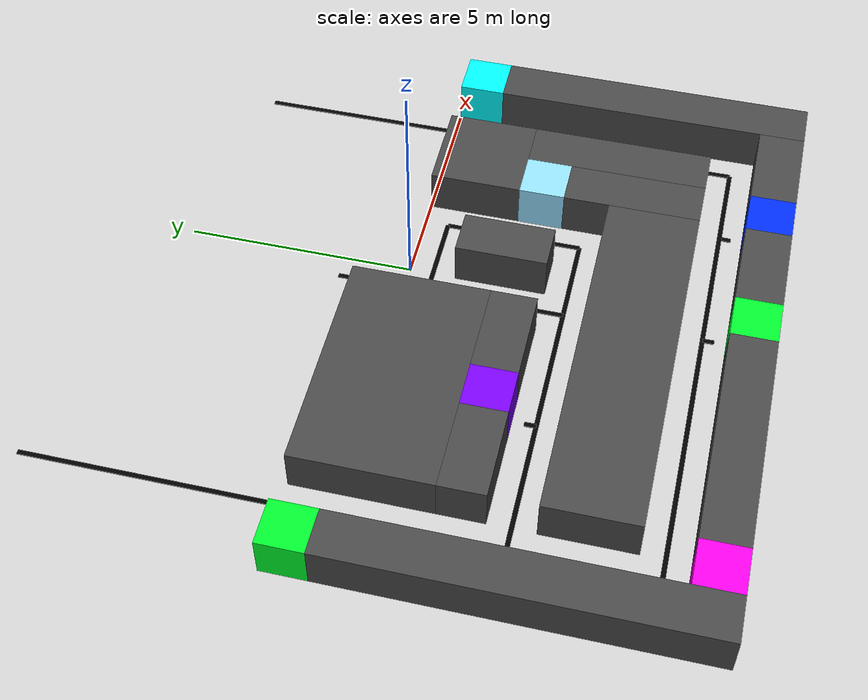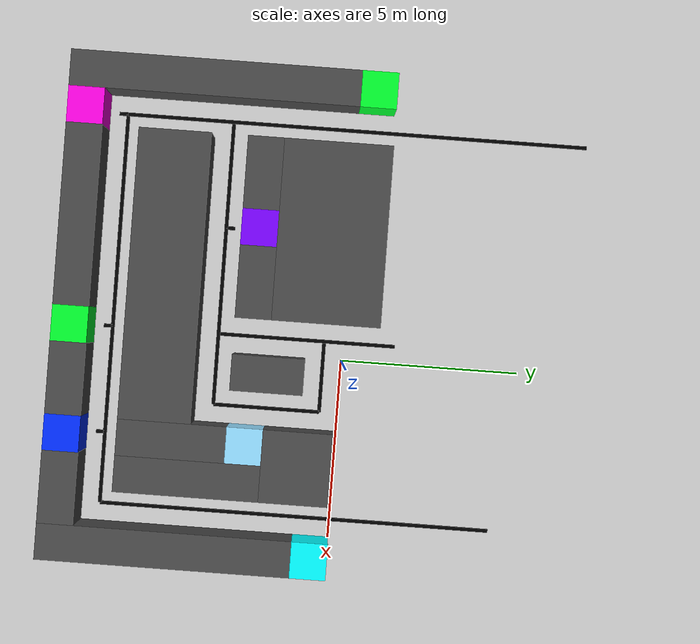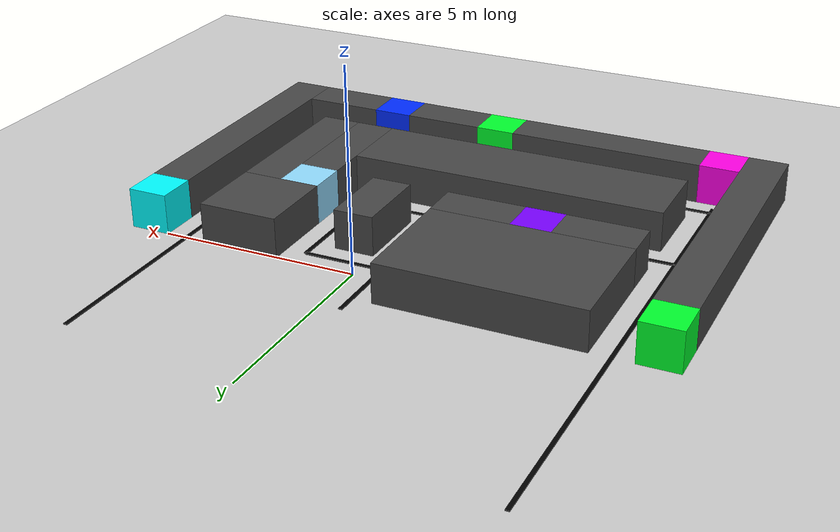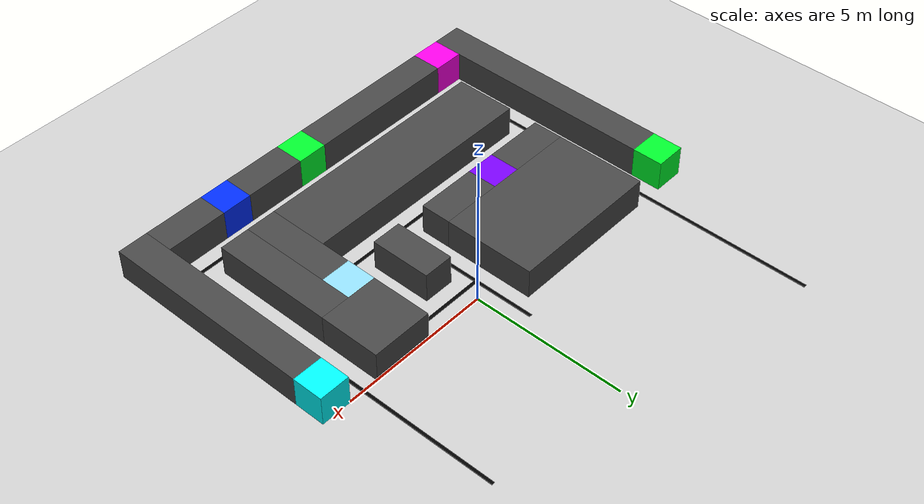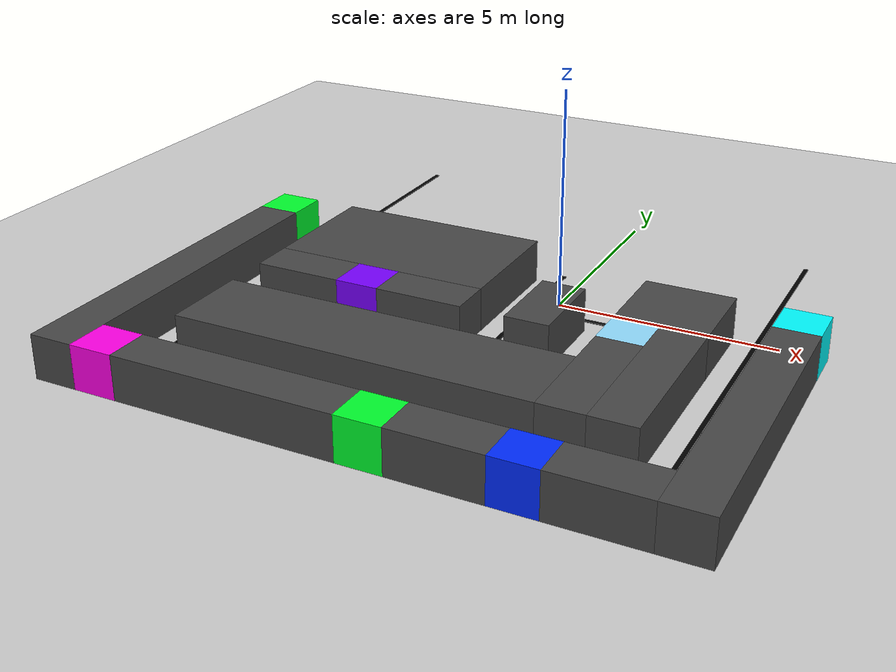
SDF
<sdf version="1.10">
 <world name="empty">
  <model name="ground_plane">
   <static>true</static>
   <link name="link">
    <collision name="collision">
     <geometry><plane><normal>0 0 1</normal><size>100 100</size></plane></geometry>
    </collision>
    <visual name="visual">
     <geometry><plane><normal>0 0 1</normal><size>100 100</size></plane></geometry>
     <material>
      <ambient>0.800000012 0.800000012 0.800000012 1</ambient>
      <diffuse>0.800000012 0.800000012 0.800000012 1</diffuse>
      <specular>0.800000012 0.800000012 0.800000012 1</specular>
     </material>
    </visual>
    <inertial>
     <mass>1</mass>
     <inertia><ixx>1</ixx><ixy>0</ixy><ixz>0</ixz><iyy>1</iyy><iyz>0</iyz><izz>1</izz></inertia>
    </inertial>
   </link>
  </model>
  <model name="CHARGER_0">
   <pose>-7.5 0.5 0.5 4.6034300000035886e-07 4.6038700000035991e-07 6.6837400000052513e-10</pose>
   <link name="box_link">
    <inertial>
     <inertia><ixx>0.16666</ixx><ixy>0</ixy><ixz>0</ixz><iyy>0.16666</iyy><iyz>0</iyz><izz>0.16666</izz></inertia>
     <mass>1</mass>
    </inertial>
    <collision name="box_collision"><geometry><box><size>1 1 1</size></box></geometry></collision>
    <visual name="box_visual">
     <geometry><box><size>1 1 1</size></box></geometry>
     <material>
      <ambient>0.300000012 0.300000012 0.300000012 1</ambient>
      <diffuse>0 1 0.175999999 1</diffuse>
      <specular>1 1 1 1</specular>
     </material>
    </visual>
   </link>
   <static>true</static>
  </model>
  <model name="box_2">
   <pose>-7.5 -4 0.5 4.6034300000035886e-07 4.6038700000035991e-07 6.6837400000052513e-10</pose>
   <link name="box_link">
    <inertial>
     <inertia><ixx>0.16666</ixx><ixy>0</ixy><ixz>0</ixz><iyy>0.16666</iyy><iyz>0</iyz><izz>0.16666</izz></inertia>
     <mass>1</mass>
    </inertial>
    <collision name="box_collision"><geometry><box><size>1 8 1</size></box></geometry></collision>
    <visual name="box_visual">
     <geometry><box><size>1 8 1</size></box></geometry>
     <material>
      <ambient>0.300000012 0.300000012 0.300000012 1</ambient>
      <diffuse>0.277999997 0.277999997 0.277999997 1</diffuse>
      <specular>1 1 1 1</specular>
     </material>
    </visual>
   </link>
   <static>true</static>
  </model>
  <model name="HOUSE_6">
   <pose>5.5 -0.5 0.5 4.6840416479999999e-44 0 0</pose>
   <link name="box_link">
    <inertial>
     <inertia><ixx>0.16666</ixx><ixy>0</ixy><ixz>0</ixz><iyy>0.16666</iyy><iyz>0</iyz><izz>0.16666</izz></inertia>
     <mass>1</mass>
    </inertial>
    <collision name="box_collision"><geometry><box><size>1 1 1</size></box></geometry></collision>
    <visual name="box_visual">
     <geometry><box><size>1 1 1</size></box></geometry>
     <material>
      <ambient>0.300000012 0.300000012 0.300000012 1</ambient>
      <diffuse>0 0.984000027 1 1</diffuse>
      <specular>1 1 1 1</specular>
     </material>
    </visual>
   </link>
   <static>true</static>
  </model>
  <model name="box_9">
   <pose>5.5 -4.5 0.5 -8.9888212590000021e-45 0 0</pose>
   <link name="box_link">
    <inertial>
     <inertia><ixx>0.16666</ixx><ixy>0</ixy><ixz>0</ixz><iyy>0.16666</iyy><iyz>0</iyz><izz>0.16666</izz></inertia>
     <mass>1</mass>
    </inertial>
    <collision name="box_collision"><geometry><box><size>1 7 1</size></box></geometry></collision>
    <visual name="box_visual">
     <geometry><box><size>1 7 1</size></box></geometry>
     <material>
      <ambient>0.300000012 0.300000012 0.300000012 1</ambient>
      <diffuse>0.277999997 0.277999997 0.277999997 1</diffuse>
      <specular>1 1 1 1</specular>
     </material>
    </visual>
   </link>
   <static>true</static>
  </model>
  <model name="box_10">
   <pose>4 -7.5 0.5 0 0 0</pose>
   <link name="box_link">
    <inertial>
     <inertia><ixx>0.16666</ixx><ixy>0</ixy><ixz>0</ixz><iyy>0.16666</iyy><iyz>0</iyz><izz>0.16666</izz></inertia>
     <mass>1</mass>
    </inertial>
    <collision name="box_collision"><geometry><box><size>2 1 1</size></box></geometry></collision>
    <visual name="box_visual">
     <geometry><box><size>2 1 1</size></box></geometry>
     <material>
      <ambient>0.300000012 0.300000012 0.300000012 1</ambient>
      <diffuse>0.277999997 0.277999997 0.277999997 1</diffuse>
      <specular>1 1 1 1</specular>
     </material>
    </visual>
   </link>
   <static>true</static>
  </model>
  <model name="HOUSE_9">
   <pose>2.5 -7.5 0.5 0 0 0</pose>
   <link name="box_link">
    <inertial>
     <inertia><ixx>0.16666</ixx><ixy>0</ixy><ixz>0</ixz><iyy>0.16666</iyy><iyz>0</iyz><izz>0.16666</izz></inertia>
     <mass>1</mass>
    </inertial>
    <collision name="box_collision"><geometry><box><size>1 1 1</size></box></geometry></collision>
    <visual name="box_visual">
     <geometry><box><size>1 1 1</size></box></geometry>
     <material>
      <ambient>0.300000012 0.300000012 0.300000012 1</ambient>
      <diffuse>0 0.172999993 1 1</diffuse>
      <specular>1 1 1 1</specular>
     </material>
    </visual>
   </link>
   <static>true</static>
  </model>
  <model name="box_12">
   <pose>1 -7.5 0.5 0 0 0</pose>
   <link name="box_link">
    <inertial>
     <inertia><ixx>0.16666</ixx><ixy>0</ixy><ixz>0</ixz><iyy>0.16666</iyy><iyz>0</iyz><izz>0.16666</izz></inertia>
     <mass>1</mass>
    </inertial>
    <collision name="box_collision"><geometry><box><size>2 1 1</size></box></geometry></collision>
    <visual name="box_visual">
     <geometry><box><size>2 1 1</size></box></geometry>
     <material>
      <ambient>0.300000012 0.300000012 0.300000012 1</ambient>
      <diffuse>0.277999997 0.277999997 0.277999997 1</diffuse>
      <specular>1 1 1 1</specular>
     </material>
    </visual>
   </link>
   <static>true</static>
  </model>
  <model name="CHARGER_2">
   <pose>-0.5 -7.5 0.5 0 0 0</pose>
   <link name="box_link">
    <inertial>
     <inertia><ixx>0.16666</ixx><ixy>0</ixy><ixz>0</ixz><iyy>0.16666</iyy><iyz>0</iyz><izz>0.16666</izz></inertia>
     <mass>1</mass>
    </inertial>
    <collision name="box_collision"><geometry><box><size>1 1 1</size></box></geometry></collision>
    <visual name="box_visual">
     <geometry><box><size>1 1 1</size></box></geometry>
     <material>
      <ambient>0.300000012 0.300000012 0.300000012 1</ambient>
      <diffuse>0 1 0.175999999 1</diffuse>
      <specular>1 1 1 1</specular>
     </material>
    </visual>
   </link>
   <static>true</static>
  </model>
  <model name="box_14">
   <pose>-3.5 -7.5 0.5 0 0 0</pose>
   <link name="box_link">
    <inertial>
     <inertia><ixx>0.16666</ixx><ixy>0</ixy><ixz>0</ixz><iyy>0.16666</iyy><iyz>0</iyz><izz>0.16666</izz></inertia>
     <mass>1</mass>
    </inertial>
    <collision name="box_collision"><geometry><box><size>5 1 1</size></box></geometry></collision>
    <visual name="box_visual">
     <geometry><box><size>5 1 1</size></box></geometry>
     <material>
      <ambient>0.300000012 0.300000012 0.300000012 1</ambient>
      <diffuse>0.277999997 0.277999997 0.277999997 1</diffuse>
      <specular>1 1 1 1</specular>
     </material>
    </visual>
   </link>
   <static>true</static>
  </model>
  <model name="HOUSE_7">
   <pose>-6.5 -7.5 0.5 0 0 0</pose>
   <link name="box_link">
    <inertial>
     <inertia><ixx>0.16666</ixx><ixy>0</ixy><ixz>0</ixz><iyy>0.16666</iyy><iyz>0</iyz><izz>0.16666</izz></inertia>
     <mass>1</mass>
    </inertial>
    <collision name="box_collision"><geometry><box><size>1 1 1</size></box></geometry></collision>
    <visual name="box_visual">
     <geometry><box><size>1 1 1</size></box></geometry>
     <material>
      <ambient>0.300000012 0.300000012 0.300000012 1</ambient>
      <diffuse>1 0 0.898000002 1</diffuse>
      <specular>1 1 1 1</specular>
     </material>
    </visual>
   </link>
   <static>true</static>
  </model>
  <model name="box_29">
   <pose>-3.5 -0.5 0.5 0 0 0</pose>
   <link name="box_link">
    <inertial>
     <inertia><ixx>0.16666</ixx><ixy>0</ixy><ixz>0</ixz><iyy>0.16666</iyy><iyz>0</iyz><izz>0.16666</izz></inertia>
     <mass>1</mass>
    </inertial>
    <collision name="box_collision"><geometry><box><size>5 3 1</size></box></geometry></collision>
    <visual name="box_visual">
     <geometry><box><size>5 3 1</size></box></geometry>
     <material>
      <ambient>0.300000012 0.300000012 0.300000012 1</ambient>
      <diffuse>0.277999997 0.277999997 0.277999997 1</diffuse>
      <specular>1 1 1 1</specular>
     </material>
    </visual>
   </link>
   <static>true</static>
  </model>
  <model name="box_30">
   <pose>-5 -2.5 0.5 0 0 0</pose>
   <link name="box_link">
    <inertial>
     <inertia><ixx>0.16666</ixx><ixy>0</ixy><ixz>0</ixz><iyy>0.16666</iyy><iyz>0</iyz><izz>0.16666</izz></inertia>
     <mass>1</mass>
    </inertial>
    <collision name="box_collision"><geometry><box><size>2 1 1</size></box></geometry></collision>
    <visual name="box_visual">
     <geometry><box><size>2 1 1</size></box></geometry>
     <material>
      <ambient>0.300000012 0.300000012 0.300000012 1</ambient>
      <diffuse>0.277999997 0.277999997 0.277999997 1</diffuse>
      <specular>1 1 1 1</specular>
     </material>
    </visual>
   </link>
   <static>true</static>
  </model>
  <model name="HOUSE_8">
   <pose>-3.5 -2.5 0.5 0 0 0</pose>
   <link name="box_link">
    <inertial>
     <inertia><ixx>0.16666</ixx><ixy>0</ixy><ixz>0</ixz><iyy>0.16666</iyy><iyz>0</iyz><izz>0.16666</izz></inertia>
     <mass>1</mass>
    </inertial>
    <collision name="box_collision"><geometry><box><size>1 1 1</size></box></geometry></collision>
    <visual name="box_visual">
     <geometry><box><size>1 1 1</size></box></geometry>
     <material>
      <ambient>0.300000012 0.300000012 0.300000012 1</ambient>
      <diffuse>0.470999986 0 1 1</diffuse>
      <specular>1 1 1 1</specular>
     </material>
    </visual>
   </link>
   <static>true</static>
  </model>
  <model name="box_32">
   <pose>-2 -2.5 0.5 0 0 0</pose>
   <link name="box_link">
    <inertial>
     <inertia><ixx>0.16666</ixx><ixy>0</ixy><ixz>0</ixz><iyy>0.16666</iyy><iyz>0</iyz><izz>0.16666</izz></inertia>
     <mass>1</mass>
    </inertial>
    <collision name="box_collision"><geometry><box><size>2 1 1</size></box></geometry></collision>
    <visual name="box_visual">
     <geometry><box><size>2 1 1</size></box></geometry>
     <material>
      <ambient>0.300000012 0.300000012 0.300000012 1</ambient>
      <diffuse>0.277999997 0.277999997 0.277999997 1</diffuse>
      <specular>1 1 1 1</specular>
     </material>
    </visual>
   </link>
   <static>true</static>
  </model>
  <model name="box_33">
   <pose>0.5 -2 0.5 0 0 0</pose>
   <link name="box_link">
    <inertial>
     <inertia><ixx>0.16666</ixx><ixy>0</ixy><ixz>0</ixz><iyy>0.16666</iyy><iyz>0</iyz><izz>0.16666</izz></inertia>
     <mass>1</mass>
    </inertial>
    <collision name="box_collision"><geometry><box><size>1 2 1</size></box></geometry></collision>
    <visual name="box_visual">
     <geometry><box><size>1 2 1</size></box></geometry>
     <material>
      <ambient>0.300000012 0.300000012 0.300000012 1</ambient>
      <diffuse>0.277999997 0.277999997 0.277999997 1</diffuse>
      <specular>1 1 1 1</specular>
     </material>
    </visual>
   </link>
   <static>true</static>
  </model>
  <model name="box_35">
   <pose>3 -1 0.5 0 0 0</pose>
   <link name="box_link">
    <inertial>
     <inertia><ixx>0.16666</ixx><ixy>0</ixy><ixz>0</ixz><iyy>0.16666</iyy><iyz>0</iyz><izz>0.16666</izz></inertia>
     <mass>1</mass>
    </inertial>
    <collision name="box_collision"><geometry><box><size>2 2 1</size></box></geometry></collision>
    <visual name="box_visual">
     <geometry><box><size>2 2 1</size></box></geometry>
     <material>
      <ambient>0.300000012 0.300000012 0.300000012 1</ambient>
      <diffuse>0.277999997 0.277999997 0.277999997 1</diffuse>
      <specular>1 1 1 1</specular>
     </material>
    </visual>
   </link>
   <static>true</static>
  </model>
  <model name="box_36">
   <pose>3.5 -4 0.5 0 0 0</pose>
   <link name="box_link">
    <inertial>
     <inertia><ixx>0.16666</ixx><ixy>0</ixy><ixz>0</ixz><iyy>0.16666</iyy><iyz>0</iyz><izz>0.16666</izz></inertia>
     <mass>1</mass>
    </inertial>
    <collision name="box_collision"><geometry><box><size>1 4 1</size></box></geometry></collision>
    <visual name="box_visual">
     <geometry><box><size>1 4 1</size></box></geometry>
     <material>
      <ambient>0.300000012 0.300000012 0.300000012 1</ambient>
      <diffuse>0.277999997 0.277999997 0.277999997 1</diffuse>
      <specular>1 1 1 1</specular>
     </material>
    </visual>
   </link>
   <static>true</static>
  </model>
  <model name="box_37">
   <pose>2.5 -4.5 0.5 0 0 0</pose>
   <link name="box_link">
    <inertial>
     <inertia><ixx>0.16666</ixx><ixy>0</ixy><ixz>0</ixz><iyy>0.16666</iyy><iyz>0</iyz><izz>0.16666</izz></inertia>
     <mass>1</mass>
    </inertial>
    <collision name="box_collision"><geometry><box><size>1 3 1</size></box></geometry></collision>
    <visual name="box_visual">
     <geometry><box><size>1 3 1</size></box></geometry>
     <material>
      <ambient>0.300000012 0.300000012 0.300000012 1</ambient>
      <diffuse>0.277999997 0.277999997 0.277999997 1</diffuse>
      <specular>1 1 1 1</specular>
     </material>
    </visual>
   </link>
   <static>true</static>
  </model>
  <model name="box_38">
   <pose>-2 -5 0.5 0 0 0</pose>
   <link name="box_link">
    <inertial>
     <inertia><ixx>0.16666</ixx><ixy>0</ixy><ixz>0</ixz><iyy>0.16666</iyy><iyz>0</iyz><izz>0.16666</izz></inertia>
     <mass>1</mass>
    </inertial>
    <collision name="box_collision"><geometry><box><size>8 2 1</size></box></geometry></collision>
    <visual name="box_visual">
     <geometry><box><size>8 2 1</size></box></geometry>
     <material>
      <ambient>0.300000012 0.300000012 0.300000012 1</ambient>
      <diffuse>0.277999997 0.277999997 0.277999997 1</diffuse>
      <specular>1 1 1 1</specular>
     </material>
    </visual>
   </link>
   <static>true</static>
  </model>
  <model name="HOUSE_10">
   <pose>2.5 -2.5 0.5 0 0 0</pose>
   <link name="box_link">
    <inertial>
     <inertia><ixx>0.16666</ixx><ixy>0</ixy><ixz>0</ixz><iyy>0.16666</iyy><iyz>0</iyz><izz>0.16666</izz></inertia>
     <mass>1</mass>
    </inertial>
    <collision name="box_collision"><geometry><box><size>1 1 1</size></box></geometry></collision>
    <visual name="box_visual">
     <geometry><box><size>1 1 1</size></box></geometry>
     <material>
      <ambient>0.300000012 0.300000012 0.300000012 1</ambient>
      <diffuse>0.573000014 0.862999976 1 1</diffuse>
      <specular>1 1 1 1</specular>
     </material>
    </visual>
   </link>
   <static>true</static>
  </model>
  <model name="line_0">
   <pose>-6.5 0 0 0 0 0</pose>
   <link name="box_link">
    <inertial>
     <inertia><ixx>0.16666</ixx><ixy>0</ixy><ixz>0</ixz><iyy>0.16666</iyy><iyz>0</iyz><izz>0.16666</izz></inertia>
     <mass>1</mass>
    </inertial>
    <collision name="box_collision">
     <geometry><box><size>0.10000000000000001 13 0.025000000000000001</size></box></geometry>
    </collision>
    <visual name="box_visual">
     <geometry><box><size>0.10000000000000001 13 0.025000000000000001</size></box></geometry>
     <material>
      <ambient>0.300000012 0.300000012 0.300000012 1</ambient>
      <diffuse>0 0 0 1</diffuse>
      <specular>1 1 1 1</specular>
     </material>
    </visual>
   </link>
   <static>false</static>
  </model>
  <model name="line_1">
   <pose>-1 -6.5 0 0 0 0</pose>
   <link name="box_link">
    <inertial>
     <inertia><ixx>0.16666</ixx><ixy>0</ixy><ixz>0</ixz><iyy>0.16666</iyy><iyz>0</iyz><izz>0.16666</izz></inertia>
     <mass>1</mass>
    </inertial>
    <collision name="box_collision">
     <geometry><box><size>11 0.10000000000000001 0.025000000000000001</size></box></geometry>
    </collision>
    <visual name="box_visual">
     <geometry><box><size>11 0.10000000000000001 0.025000000000000001</size></box></geometry>
     <material>
      <ambient>0.300000012 0.300000012 0.300000012 1</ambient>
      <diffuse>0 0 0 1</diffuse>
      <specular>1 1 1 1</specular>
     </material>
    </visual>
   </link>
   <static>false</static>
  </model>
  <model name="line_2">
   <pose>4.5 -1 0 0 0 0</pose>
   <link name="box_link">
    <inertial>
     <inertia><ixx>0.16666</ixx><ixy>0</ixy><ixz>0</ixz><iyy>0.16666</iyy><iyz>0</iyz><izz>0.16666</izz></inertia>
     <mass>1</mass>
    </inertial>
    <collision name="box_collision">
     <geometry><box><size>0.10000000000000001 11 0.025000000000000001</size></box></geometry>
    </collision>
    <visual name="box_visual">
     <geometry><box><size>0.10000000000000001 11 0.025000000000000001</size></box></geometry>
     <material>
      <ambient>0.300000012 0.300000012 0.300000012 1</ambient>
      <diffuse>0 0 0 1</diffuse>
      <specular>1 1 1 1</specular>
     </material>
    </visual>
   </link>
   <static>true</static>
  </model>
  <model name="line_4">
   <pose>-2.5 -3.5 0 0 0 0</pose>
   <link name="box_link">
    <inertial>
     <inertia><ixx>0.16666</ixx><ixy>0</ixy><ixz>0</ixz><iyy>0.16666</iyy><iyz>0</iyz><izz>0.16666</izz></inertia>
     <mass>1</mass>
    </inertial>
    <collision name="box_collision">
     <geometry><box><size>8 0.10000000000000001 0.025000000000000001</size></box></geometry>
    </collision>
    <visual name="box_visual">
     <geometry><box><size>8 0.10000000000000001 0.025000000000000001</size></box></geometry>
     <material>
      <ambient>0.300000012 0.300000012 0.300000012 1</ambient>
      <diffuse>0 0 0 1</diffuse>
      <specular>1 1 1 1</specular>
     </material>
    </visual>
   </link>
   <static>true</static>
  </model>
  <model name="line_5">
   <pose>-0.5 -1 0 0 0 0</pose>
   <link name="box_link">
    <inertial>
     <inertia><ixx>0.16666</ixx><ixy>0</ixy><ixz>0</ixz><iyy>0.16666</iyy><iyz>0</iyz><izz>0.16666</izz></inertia>
     <mass>1</mass>
    </inertial>
    <collision name="box_collision">
     <geometry><box><size>0.10000000000000001 5 0.025000000000000001</size></box></geometry>
    </collision>
    <visual name="box_visual">
     <geometry><box><size>0.10000000000000001 5 0.025000000000000001</size></box></geometry>
     <material>
      <ambient>0.300000012 0.300000012 0.300000012 1</ambient>
      <diffuse>0 0 0 1</diffuse>
      <specular>1 1 1 1</specular>
     </material>
    </visual>
   </link>
   <static>true</static>
  </model>
  <model name="line_6">
   <pose>1.5 -2 0 0 0 0</pose>
   <link name="box_link">
    <inertial>
     <inertia><ixx>0.16666</ixx><ixy>0</ixy><ixz>0</ixz><iyy>0.16666</iyy><iyz>0</iyz><izz>0.16666</izz></inertia>
     <mass>1</mass>
    </inertial>
    <collision name="box_collision">
     <geometry><box><size>0.10000000000000001 3 0.025000000000000001</size></box></geometry>
    </collision>
    <visual name="box_visual">
     <geometry><box><size>0.10000000000000001 3 0.025000000000000001</size></box></geometry>
     <material>
      <ambient>0.300000012 0.300000012 0.300000012 1</ambient>
      <diffuse>0 0 0 1</diffuse>
      <specular>1 1 1 1</specular>
     </material>
    </visual>
   </link>
   <static>true</static>
  </model>
  <model name="line_7">
   <pose>0.5 -0.5 0 0 0 0</pose>
   <link name="box_link">
    <inertial>
     <inertia><ixx>0.16666</ixx><ixy>0</ixy><ixz>0</ixz><iyy>0.16666</iyy><iyz>0</iyz><izz>0.16666</izz></inertia>
     <mass>1</mass>
    </inertial>
    <collision name="box_collision">
     <geometry><box><size>2 0.10000000000000001 0.025000000000000001</size></box></geometry>
    </collision>
    <visual name="box_visual">
     <geometry><box><size>2 0.10000000000000001 0.025000000000000001</size></box></geometry>
     <material>
      <ambient>0.300000012 0.300000012 0.300000012 1</ambient>
      <diffuse>0 0 0 1</diffuse>
      <specular>1 1 1 1</specular>
     </material>
    </visual>
   </link>
   <static>true</static>
  </model>
  <model name="in_line_H8">
   <pose>-3.5 -3.375 0 0 0 0</pose>
   <link name="box_link">
    <inertial>
     <inertia><ixx>0.16666</ixx><ixy>0</ixy><ixz>0</ixz><iyy>0.16666</iyy><iyz>0</iyz><izz>0.16666</izz></inertia>
     <mass>1</mass>
    </inertial>
    <collision name="box_collision">
     <geometry><box><size>0.10000000000000001 0.25 0.025000000000000001</size></box></geometry>
    </collision>
    <visual name="box_visual">
     <geometry><box><size>0.10000000000000001 0.25 0.025000000000000001</size></box></geometry>
     <material>
      <ambient>0.300000012 0.300000012 0.300000012 1</ambient>
      <diffuse>0 0 0 1</diffuse>
      <specular>1 1 1 1</specular>
     </material>
    </visual>
   </link>
   <static>true</static>
  </model>
  <model name="in_line_H9">
   <pose>2.5 -6.625 0 0 0 0</pose>
   <link name="box_link">
    <inertial>
     <inertia><ixx>0.16666</ixx><ixy>0</ixy><ixz>0</ixz><iyy>0.16666</iyy><iyz>0</iyz><izz>0.16666</izz></inertia>
     <mass>1</mass>
    </inertial>
    <collision name="box_collision"><geometry><box><size>0.1 0.25 0.025</size></box></geometry></collision>
    <visual name="box_visual">
     <geometry><box><size>0.1 0.25 0.025</size></box></geometry>
     <material>
      <ambient>0.300000012 0.300000012 0.300000012 1</ambient>
      <diffuse>0 0 0 1</diffuse>
      <specular>1 1 1 1</specular>
     </material>
    </visual>
   </link>
   <static>true</static>
  </model>
  <model name="inline_C2">
   <pose>-0.5 -6.625 0 0 0 0</pose>
   <link name="box_link">
    <inertial>
     <inertia><ixx>0.16666</ixx><ixy>0</ixy><ixz>0</ixz><iyy>0.16666</iyy><iyz>0</iyz><izz>0.16666</izz></inertia>
     <mass>1</mass>
    </inertial>
    <collision name="box_collision"><geometry><box><size>0.1 0.25 0.025</size></box></geometry></collision>
    <visual name="box_visual">
     <geometry><box><size>0.1 0.25 0.025</size></box></geometry>
     <material>
      <ambient>0.300000012 0.300000012 0.300000012 1</ambient>
      <diffuse>0 0 0 1</diffuse>
      <specular>1 1 1 1</specular>
     </material>
    </visual>
   </link>
   <static>true</static>
  </model>
  <model name="in_line_H7">
   <pose>-6.5 -6.625 0 0 0 0</pose>
   <link name="box_link">
    <inertial>
     <inertia><ixx>0.16666</ixx><ixy>0</ixy><ixz>0</ixz><iyy>0.16666</iyy><iyz>0</iyz><izz>0.16666</izz></inertia>
     <mass>1</mass>
    </inertial>
    <collision name="box_collision"><geometry><box><size>0.1 0.25 0.025</size></box></geometry></collision>
    <visual name="box_visual">
     <geometry><box><size>0.1 0.25 0.025</size></box></geometry>
     <material>
      <ambient>0.300000012 0.300000012 0.300000012 1</ambient>
      <diffuse>0 0 0 1</diffuse>
      <specular>1 1 1 1</specular>
     </material>
    </visual>
   </link>
   <static>true</static>
  </model>
 </world>
</sdf>
